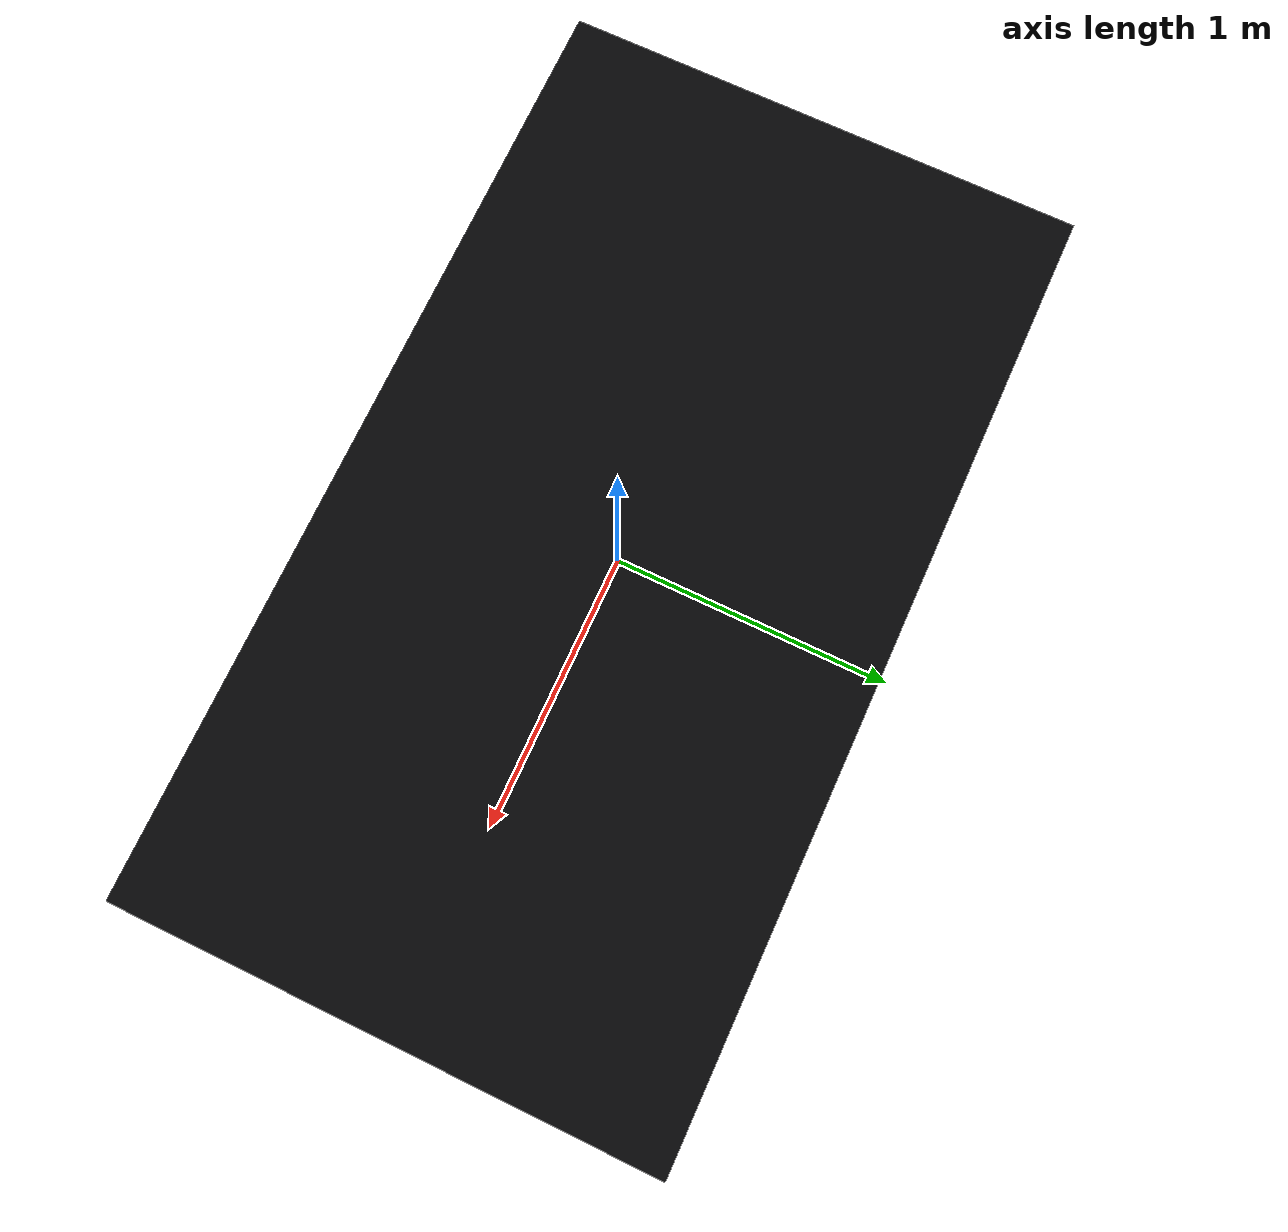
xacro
<?xml version="1.0"?>
<robot xmlns:xacro="http://www.ros.org/wiki/xacro" name="landing_boat">
  <link name="base_link">
    <visual>
      <origin xyz="0 0 0" rpy="0 0 0"/>
      <geometry>
        <box size="3.4 1.9 0.5"/>
      </geometry>
      <material name="boat_black">
        <color rgba="0.03 0.03 0.035 1"/>
      </material>
    </visual>
  </link>

  <link name="hull/front_lidar"/>
  <joint name="front_lidar_joint" type="fixed">
    <parent link="base_link"/>
    <child link="hull/front_lidar"/>
    <origin xyz="0.55 0 1.55" rpy="0 0 0"/>
  </joint>

  <link name="mid360_link"/>
  <joint name="mid360_joint" type="fixed">
    <parent link="base_link"/>
    <child link="mid360_link"/>
    <origin xyz="0.55 0 1.55" rpy="0 0 0"/>
  </joint>

  <link name="front_camera_link"/>
  <joint name="front_camera_joint" type="fixed">
    <parent link="base_link"/>
    <child link="front_camera_link"/>
    <origin xyz="1.405 0 0.86" rpy="0 0 0"/>
  </joint>

  <link name="imu_link"/>
  <joint name="imu_joint" type="fixed">
    <parent link="base_link"/>
    <child link="imu_link"/>
    <origin xyz="0 0 0.45" rpy="0 0 0"/>
  </joint>

  <link name="landing_pad_link"/>
  <joint name="landing_pad_joint" type="fixed">
    <parent link="base_link"/>
    <child link="landing_pad_link"/>
    <origin xyz="-0.92 0 0.43" rpy="0 0 0"/>
  </joint>
</robot>
